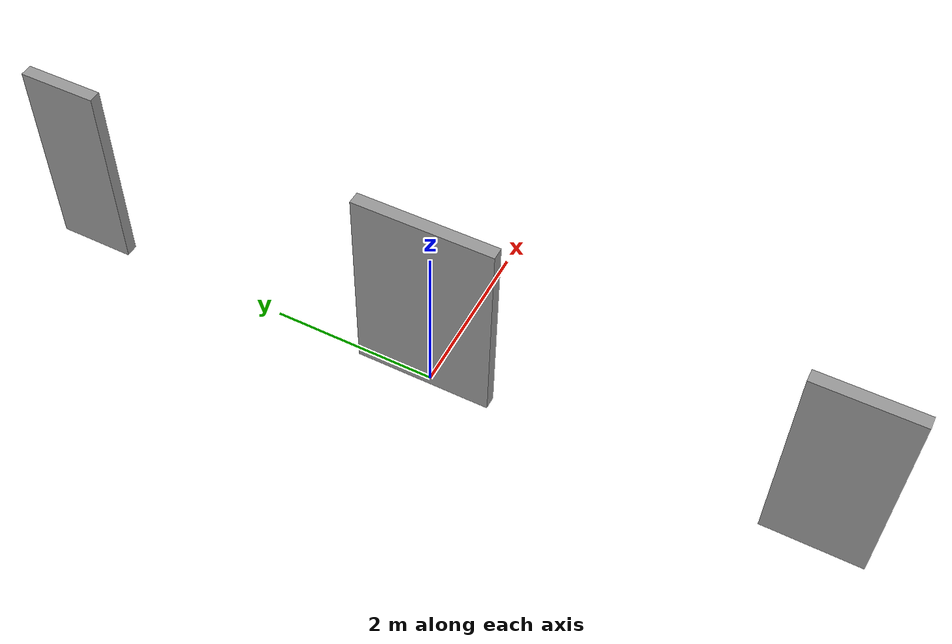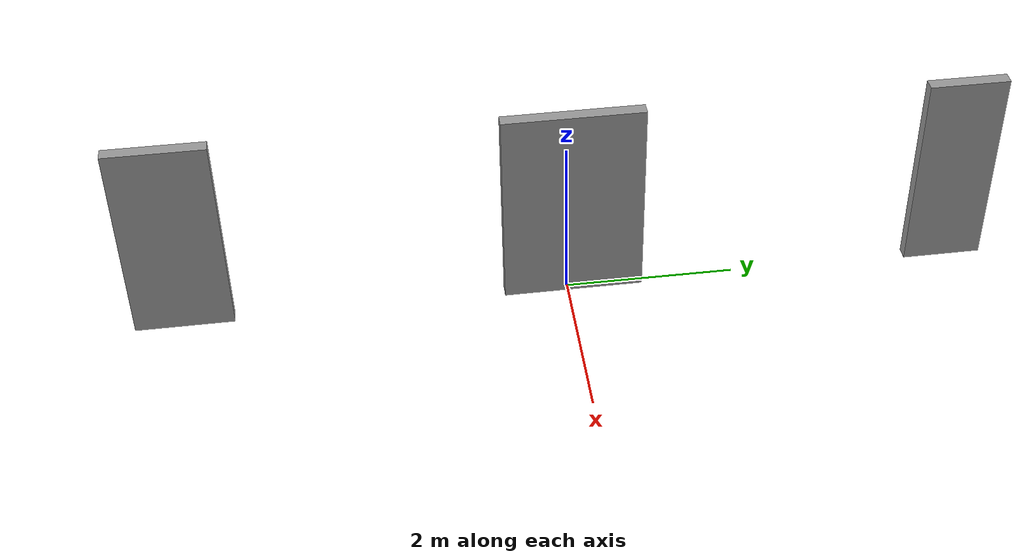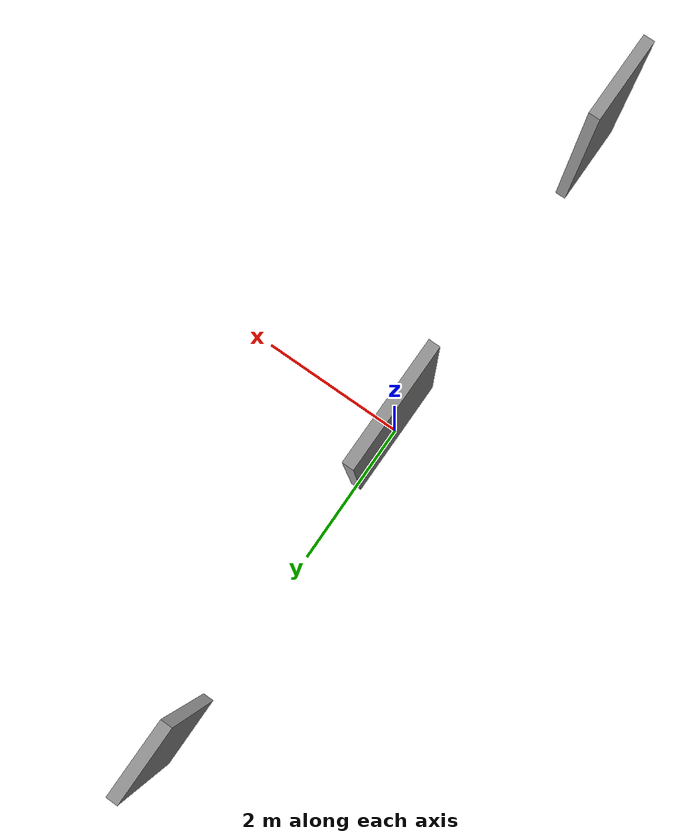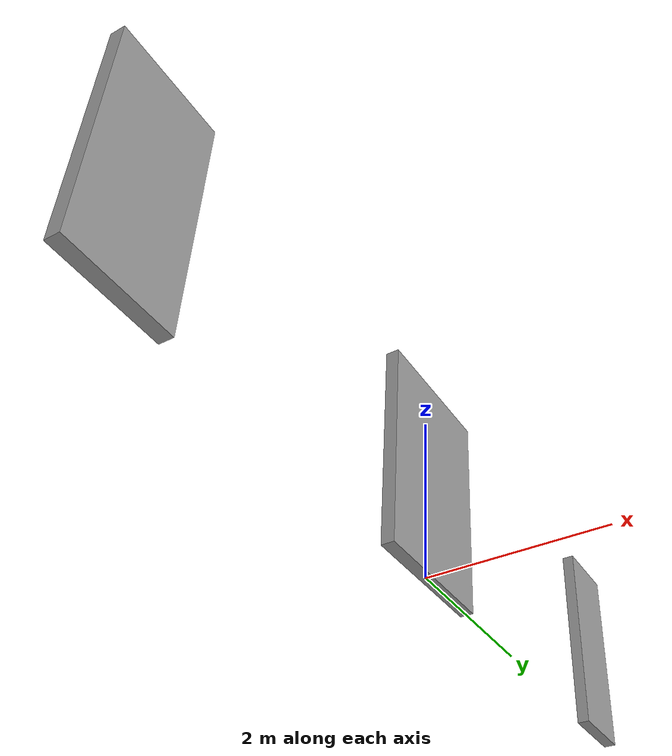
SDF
<?xml version='1.0'?>
<sdf version='1.6'>
  <model name='line_wall_1'>
    <pose frame=''>0 0 0 0 -0 0</pose>
    <link name='Wall_11'>
      <pose frame=''>0 0 0 0 -0 1.5708</pose>
      <visual name='Wall_11_Visual_0'>
        <pose frame=''>-4.50142 0 1.25 0 -0 0</pose>
        <geometry>
          <box>
            <size>1.14716 0.15 2.5</size>
          </box>
        </geometry>
        <material>
          <script>
            <uri>file://media/materials/scripts/gazebo.material</uri>
            <name>Gazebo/Grey</name>
          </script>
          <ambient>1 1 1 1</ambient>
        </material>
        <meta>
          <layer>0</layer>
        </meta>
      </visual>
      <collision name='Wall_11_Collision_0'>
        <geometry>
          <box>
            <size>1.14716 0.15 2.5</size>
          </box>
        </geometry>
        <pose frame=''>-4.50142 0 1.25 0 -0 0</pose>
      </collision>
      <visual name='Wall_11_Visual_1'>
        <pose frame=''>0.070673 0 1.25 0 -0 0</pose>
        <geometry>
          <box>
            <size>1.64376 0.15 2.5</size>
          </box>
        </geometry>
        <material>
          <script>
            <uri>file://media/materials/scripts/gazebo.material</uri>
            <name>Gazebo/Grey</name>
          </script>
          <ambient>1 1 1 1</ambient>
        </material>
        <meta>
          <layer>0</layer>
        </meta>
      </visual>
      <collision name='Wall_11_Collision_1'>
        <geometry>
          <box>
            <size>1.64376 0.15 2.5</size>
          </box>
        </geometry>
        <pose frame=''>0.070673 0 1.25 0 -0 0</pose>
      </collision>
      <visual name='Wall_11_Visual_2'>
        <pose frame=''>4.60561 0 1.25 0 -0 0</pose>
        <geometry>
          <box>
            <size>0.93878 0.15 2.5</size>
          </box>
        </geometry>
        <material>
          <script>
            <uri>file://media/materials/scripts/gazebo.material</uri>
            <name>Gazebo/Grey</name>
          </script>
          <ambient>1 1 1 1</ambient>
        </material>
        <meta>
          <layer>0</layer>
        </meta>
      </visual>
      <collision name='Wall_11_Collision_2'>
        <geometry>
          <box>
            <size>0.93878 0.15 2.5</size>
          </box>
        </geometry>
        <pose frame=''>4.60561 0 1.25 0 -0 0</pose>
      </collision>
    </link>
    <static>1</static>
  </model>
</sdf>
